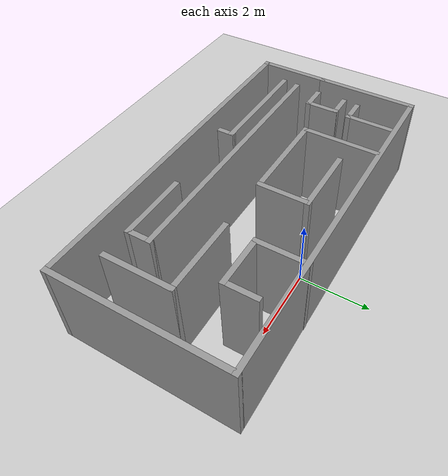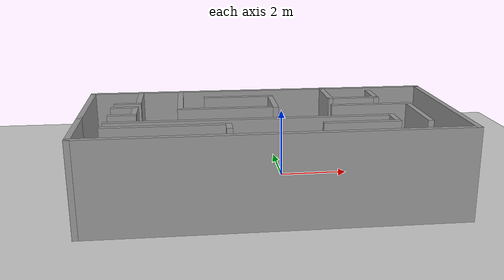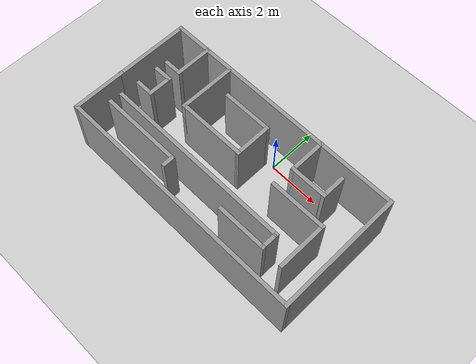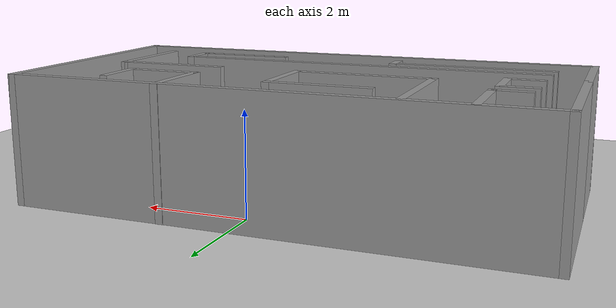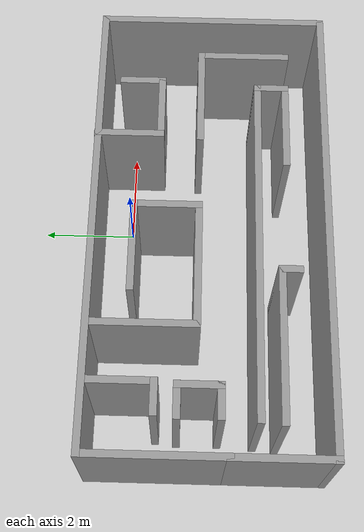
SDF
<sdf version="1.7">
 <world name="default">
  <light name="sun" type="directional">
   <pose>0 0 10 0 -0 0</pose>
   <diffuse>0.8 0.8 0.8 1</diffuse>
   <specular>0.2 0.2 0.2 1</specular>
   <attenuation>
    <range>1000</range>
    <constant>0.9</constant>
    <linear>0.01</linear>
    <quadratic>0.001</quadratic>
   </attenuation>
   <direction>-0.5 0.1 -0.9</direction>
   <spot><inner_angle>0</inner_angle><outer_angle>0</outer_angle><falloff>0</falloff></spot>
  </light>
  <model name="ground_plane">
   <static>1</static>
   <link name="link">
    <collision name="collision">
     <geometry><plane><normal>0 0 1</normal><size>100 100</size></plane></geometry>
     <surface><friction><ode><mu>100</mu><mu2>50</mu2></ode></friction></surface>
    </collision>
    <visual name="visual">
     <cast_shadows>0</cast_shadows>
     <geometry><plane><normal>0 0 1</normal><size>100 100</size></plane></geometry>
     <material>
      <script><uri>file://media/materials/scripts/gazebo.material</uri><name>Gazebo/Grey</name></script>
     </material>
    </visual>
   </link>
  </model>
  <gravity>0 0 -9.8</gravity>
  <magnetic_field>6e-06 2.3e-05 -4.2e-05</magnetic_field>
  <atmosphere type="adiabatic"/>
  <physics type="ode">
   <max_step_size>0.001</max_step_size>
   <real_time_factor>1</real_time_factor>
   <real_time_update_rate>1000</real_time_update_rate>
  </physics>
  <scene><ambient>0.4 0.4 0.4 1</ambient><background>0.7 0.7 0.7 1</background><shadows>1</shadows></scene>
  <audio><device>default</device></audio>
  <spherical_coordinates>
   <surface_model>EARTH_WGS84</surface_model>
   <latitude_deg>0</latitude_deg>
   <longitude_deg>0</longitude_deg>
   <elevation>0</elevation>
   <heading_deg>0</heading_deg>
  </spherical_coordinates>
  <model name="simulation">
   <pose>-0.605204 -1.0613 0 0 -0 0</pose>
   <link name="Wall_0">
    <collision name="Wall_0_Collision">
     <geometry><box><size>3 0.15 2.5</size></box></geometry>
     <pose>0 0 1.25 0 -0 0</pose>
    </collision>
    <visual name="Wall_0_Visual">
     <pose>0 0 1.25 0 -0 0</pose>
     <geometry><box><size>3 0.15 2.5</size></box></geometry>
     <material>
      <script><uri>file://media/materials/scripts/gazebo.material</uri><name>Gazebo/Grey</name></script>
      <ambient>1 1 1 1</ambient>
     </material>
     <meta><layer>0</layer></meta>
    </visual>
    <pose>-4.925 0.3525 0 0 -0 1.5708</pose>
   </link>
   <link name="Wall_1">
    <collision name="Wall_1_Collision">
     <geometry><box><size>10 0.15 2.5</size></box></geometry>
     <pose>0 0 1.25 0 -0 0</pose>
    </collision>
    <visual name="Wall_1_Visual">
     <pose>0 0 1.25 0 -0 0</pose>
     <geometry><box><size>10 0.15 2.5</size></box></geometry>
     <material>
      <script><uri>file://media/materials/scripts/gazebo.material</uri><name>Gazebo/Grey</name></script>
      <ambient>1 1 1 1</ambient>
     </material>
     <meta><layer>0</layer></meta>
    </visual>
    <pose>0 1.7775 0 0 -0 0</pose>
   </link>
   <link name="Wall_10">
    <collision name="Wall_10_Collision">
     <geometry><box><size>1 0.15 2.5</size></box></geometry>
     <pose>0 0 1.25 0 -0 0</pose>
    </collision>
    <visual name="Wall_10_Visual">
     <pose>0 0 1.25 0 -0 0</pose>
     <geometry><box><size>1 0.15 2.5</size></box></geometry>
     <material>
      <script><uri>file://media/materials/scripts/gazebo.material</uri><name>Gazebo/Grey</name></script>
      <ambient>1 1 1 1</ambient>
     </material>
     <meta><layer>0</layer></meta>
    </visual>
    <pose>-3.575 -0.4775 0 0 -0 -1.5708</pose>
   </link>
   <link name="Wall_11">
    <collision name="Wall_11_Collision">
     <geometry><box><size>0.75 0.15 2.5</size></box></geometry>
     <pose>0 0 1.25 0 -0 0</pose>
    </collision>
    <visual name="Wall_11_Visual">
     <pose>0 0 1.25 0 -0 0</pose>
     <geometry><box><size>0.75 0.15 2.5</size></box></geometry>
     <material>
      <script><uri>file://media/materials/scripts/gazebo.material</uri><name>Gazebo/Grey</name></script>
      <ambient>1 1 1 1</ambient>
     </material>
     <meta><layer>0</layer></meta>
    </visual>
    <pose>-3.875 -0.9025 0 0 -0 3.14159</pose>
   </link>
   <link name="Wall_13">
    <collision name="Wall_13_Collision">
     <geometry><box><size>2.25 0.15 2.5</size></box></geometry>
     <pose>0 0 1.25 0 -0 0</pose>
    </collision>
    <visual name="Wall_13_Visual">
     <pose>0 0 1.25 0 -0 0</pose>
     <geometry><box><size>2.25 0.15 2.5</size></box></geometry>
     <material>
      <script><uri>file://media/materials/scripts/gazebo.material</uri><name>Gazebo/Grey</name></script>
      <ambient>1 1 1 1</ambient>
     </material>
     <meta><layer>0</layer></meta>
    </visual>
    <pose>-2.365 0.6375 0 0 -0 -1.5708</pose>
   </link>
   <link name="Wall_14">
    <collision name="Wall_14_Collision">
     <geometry><box><size>2.75 0.15 2.5</size></box></geometry>
     <pose>0 0 1.25 0 -0 0</pose>
    </collision>
    <visual name="Wall_14_Visual">
     <pose>0 0 1.25 0 -0 0</pose>
     <geometry><box><size>2.75 0.15 2.5</size></box></geometry>
     <material>
      <script><uri>file://media/materials/scripts/gazebo.material</uri><name>Gazebo/Grey</name></script>
      <ambient>1 1 1 1</ambient>
     </material>
     <meta><layer>0</layer></meta>
    </visual>
    <pose>-1.065 -0.4125 0 0 -0 0</pose>
   </link>
   <link name="Wall_15">
    <collision name="Wall_15_Collision">
     <geometry><box><size>1.5 0.15 2.5</size></box></geometry>
     <pose>0 0 1.25 0 -0 0</pose>
    </collision>
    <visual name="Wall_15_Visual">
     <pose>0 0 1.25 0 -0 0</pose>
     <geometry><box><size>1.5 0.15 2.5</size></box></geometry>
     <material>
      <script><uri>file://media/materials/scripts/gazebo.material</uri><name>Gazebo/Grey</name></script>
      <ambient>1 1 1 1</ambient>
     </material>
     <meta><layer>0</layer></meta>
    </visual>
    <pose>0.235 0.2625 0 0 -0 1.5708</pose>
   </link>
   <link name="Wall_16">
    <collision name="Wall_16_Collision">
     <geometry><box><size>2 0.15 2.5</size></box></geometry>
     <pose>0 0 1.25 0 -0 0</pose>
    </collision>
    <visual name="Wall_16_Visual">
     <pose>0 0 1.25 0 -0 0</pose>
     <geometry><box><size>2 0.15 2.5</size></box></geometry>
     <material>
      <script><uri>file://media/materials/scripts/gazebo.material</uri><name>Gazebo/Grey</name></script>
      <ambient>1 1 1 1</ambient>
     </material>
     <meta><layer>0</layer></meta>
    </visual>
    <pose>-0.69 0.9375 0 0 -0 3.14159</pose>
   </link>
   <link name="Wall_18">
    <collision name="Wall_18_Collision">
     <geometry><box><size>7.5 0.15 2.5</size></box></geometry>
     <pose>0 0 1.25 0 -0 0</pose>
    </collision>
    <visual name="Wall_18_Visual">
     <pose>0 0 1.25 0 -0 0</pose>
     <geometry><box><size>7.5 0.15 2.5</size></box></geometry>
     <material>
      <script><uri>file://media/materials/scripts/gazebo.material</uri><name>Gazebo/Grey</name></script>
      <ambient>1 1 1 1</ambient>
     </material>
     <meta><layer>0</layer></meta>
    </visual>
    <pose>-0.54 -1.6425 0 0 -0 0</pose>
   </link>
   <link name="Wall_19">
    <collision name="Wall_19_Collision">
     <geometry><box><size>0.75 0.15 2.5</size></box></geometry>
     <pose>0 0 1.25 0 -0 0</pose>
    </collision>
    <visual name="Wall_19_Visual">
     <pose>0 0 1.25 0 -0 0</pose>
     <geometry><box><size>0.75 0.15 2.5</size></box></geometry>
     <material>
      <script><uri>file://media/materials/scripts/gazebo.material</uri><name>Gazebo/Grey</name></script>
      <ambient>1 1 1 1</ambient>
     </material>
     <meta><layer>0</layer></meta>
    </visual>
    <pose>3.135 -1.9425 0 0 -0 -1.5708</pose>
   </link>
   <link name="Wall_2">
    <collision name="Wall_2_Collision">
     <geometry><box><size>5 0.15 2.5</size></box></geometry>
     <pose>0 0 1.25 0 -0 0</pose>
    </collision>
    <visual name="Wall_2_Visual">
     <pose>0 0 1.25 0 -0 0</pose>
     <geometry><box><size>5 0.15 2.5</size></box></geometry>
     <material>
      <script><uri>file://media/materials/scripts/gazebo.material</uri><name>Gazebo/Grey</name></script>
      <ambient>1 1 1 1</ambient>
     </material>
     <meta><layer>0</layer></meta>
    </visual>
    <pose>4.925 -0.6475 0 0 -0 -1.5708</pose>
   </link>
   <link name="Wall_20">
    <collision name="Wall_20_Collision">
     <geometry><box><size>2 0.15 2.5</size></box></geometry>
     <pose>0 0 1.25 0 -0 0</pose>
    </collision>
    <visual name="Wall_20_Visual">
     <pose>0 0 1.25 0 -0 0</pose>
     <geometry><box><size>2 0.15 2.5</size></box></geometry>
     <material>
      <script><uri>file://media/materials/scripts/gazebo.material</uri><name>Gazebo/Grey</name></script>
      <ambient>1 1 1 1</ambient>
     </material>
     <meta><layer>0</layer></meta>
    </visual>
    <pose>2.21 -2.2425 0 0 -0 3.14159</pose>
   </link>
   <link name="Wall_22">
    <collision name="Wall_22_Collision">
     <geometry><box><size>3.25 0.15 2.5</size></box></geometry>
     <pose>0 0 1.25 0 -0 0</pose>
    </collision>
    <visual name="Wall_22_Visual">
     <pose>0 0 1.25 0 -0 0</pose>
     <geometry><box><size>3.25 0.15 2.5</size></box></geometry>
     <material>
      <script><uri>file://media/materials/scripts/gazebo.material</uri><name>Gazebo/Grey</name></script>
      <ambient>1 1 1 1</ambient>
     </material>
     <meta><layer>0</layer></meta>
    </visual>
    <pose>-2.705 -2.1025 0 0 -0 0</pose>
   </link>
   <link name="Wall_23">
    <collision name="Wall_23_Collision">
     <geometry><box><size>0.5 0.15 2.5</size></box></geometry>
     <pose>0 0 1.25 0 -0 0</pose>
    </collision>
    <visual name="Wall_23_Visual">
     <pose>0 0 1.25 0 -0 0</pose>
     <geometry><box><size>0.5 0.15 2.5</size></box></geometry>
     <material>
      <script><uri>file://media/materials/scripts/gazebo.material</uri><name>Gazebo/Grey</name></script>
      <ambient>1 1 1 1</ambient>
     </material>
     <meta><layer>0</layer></meta>
    </visual>
    <pose>-1.155 -2.2775 0 0 -0 -1.5708</pose>
   </link>
   <link name="Wall_27">
    <collision name="Wall_27_Collision">
     <geometry><box><size>1.5 0.15 2.5</size></box></geometry>
     <pose>0 0 1.25 0 -0 0</pose>
    </collision>
    <visual name="Wall_27_Visual">
     <pose>0 0 1.25 0 -0 0</pose>
     <geometry><box><size>1.5 0.15 2.5</size></box></geometry>
     <material>
      <script><uri>file://media/materials/scripts/gazebo.material</uri><name>Gazebo/Grey</name></script>
      <ambient>1 1 1 1</ambient>
     </material>
     <meta><layer>0</layer></meta>
    </visual>
    <pose>1.925 1.1125 0 0 -0 -1.5708</pose>
   </link>
   <link name="Wall_28">
    <collision name="Wall_28_Collision">
     <geometry><box><size>1.5 0.15 2.5</size></box></geometry>
     <pose>0 0 1.25 0 -0 0</pose>
    </collision>
    <visual name="Wall_28_Visual">
     <pose>0 0 1.25 0 -0 0</pose>
     <geometry><box><size>1.5 0.15 2.5</size></box></geometry>
     <material>
      <script><uri>file://media/materials/scripts/gazebo.material</uri><name>Gazebo/Grey</name></script>
      <ambient>1 1 1 1</ambient>
     </material>
     <meta><layer>0</layer></meta>
    </visual>
    <pose>2.6 0.4375 0 0 -0 0</pose>
   </link>
   <link name="Wall_29">
    <collision name="Wall_29_Collision">
     <geometry><box><size>1 0.15 2.5</size></box></geometry>
     <pose>0 0 1.25 0 -0 0</pose>
    </collision>
    <visual name="Wall_29_Visual">
     <pose>0 0 1.25 0 -0 0</pose>
     <geometry><box><size>1 0.15 2.5</size></box></geometry>
     <material>
      <script><uri>file://media/materials/scripts/gazebo.material</uri><name>Gazebo/Grey</name></script>
      <ambient>1 1 1 1</ambient>
     </material>
     <meta><layer>0</layer></meta>
    </visual>
    <pose>3.275 0.8625 0 0 -0 1.5708</pose>
   </link>
   <link name="Wall_3">
    <collision name="Wall_3_Collision">
     <geometry><box><size>10 0.15 2.5</size></box></geometry>
     <pose>0 0 1.25 0 -0 0</pose>
    </collision>
    <visual name="Wall_3_Visual">
     <pose>0 0 1.25 0 -0 0</pose>
     <geometry><box><size>10 0.15 2.5</size></box></geometry>
     <material>
      <script><uri>file://media/materials/scripts/gazebo.material</uri><name>Gazebo/Grey</name></script>
      <ambient>1 1 1 1</ambient>
     </material>
     <meta><layer>0</layer></meta>
    </visual>
    <pose>0 -3.0725 0 0 -0 3.14159</pose>
   </link>
   <link name="Wall_31">
    <collision name="Wall_31_Collision">
     <geometry><box><size>2.25 0.15 2.5</size></box></geometry>
     <pose>0 0 1.25 0 -0 0</pose>
    </collision>
    <visual name="Wall_31_Visual">
     <pose>0 0 1.25 0 -0 0</pose>
     <geometry><box><size>2.25 0.15 2.5</size></box></geometry>
     <material>
      <script><uri>file://media/materials/scripts/gazebo.material</uri><name>Gazebo/Grey</name></script>
      <ambient>1 1 1 1</ambient>
     </material>
     <meta><layer>0</layer></meta>
    </visual>
    <pose>2.915 -0.4125 0 0 -0 0</pose>
   </link>
   <link name="Wall_32">
    <collision name="Wall_32_Collision">
     <geometry><box><size>2 0.15 2.5</size></box></geometry>
     <pose>0 0 1.25 0 -0 0</pose>
    </collision>
    <visual name="Wall_32_Visual">
     <pose>0 0 1.25 0 -0 0</pose>
     <geometry><box><size>2 0.15 2.5</size></box></geometry>
     <material>
      <script><uri>file://media/materials/scripts/gazebo.material</uri><name>Gazebo/Grey</name></script>
      <ambient>1 1 1 1</ambient>
     </material>
     <meta><layer>0</layer></meta>
    </visual>
    <pose>3.965 -1.3375 0 0 -0 -1.5708</pose>
   </link>
   <link name="Wall_4">
    <collision name="Wall_4_Collision">
     <geometry><box><size>2.15 0.15 2.5</size></box></geometry>
     <pose>0 0 1.25 0 -0 0</pose>
    </collision>
    <visual name="Wall_4_Visual">
     <pose>0 0 1.25 0 -0 0</pose>
     <geometry><box><size>2.15 0.15 2.5</size></box></geometry>
     <material>
      <script><uri>file://media/materials/scripts/gazebo.material</uri><name>Gazebo/Grey</name></script>
      <ambient>1 1 1 1</ambient>
     </material>
     <meta><layer>0</layer></meta>
    </visual>
    <pose>-4.925 -2.0725 0 0 -0 1.5708</pose>
   </link>
   <link name="Wall_6">
    <collision name="Wall_6_Collision">
     <geometry><box><size>1.5 0.15 2.5</size></box></geometry>
     <pose>0 0 1.25 0 -0 0</pose>
    </collision>
    <visual name="Wall_6_Visual">
     <pose>0 0 1.25 0 -0 0</pose>
     <geometry><box><size>1.5 0.15 2.5</size></box></geometry>
     <material>
      <script><uri>file://media/materials/scripts/gazebo.material</uri><name>Gazebo/Grey</name></script>
      <ambient>1 1 1 1</ambient>
     </material>
     <meta><layer>0</layer></meta>
    </visual>
    <pose>-3.525 1.0625 0 0 -0 -1.5708</pose>
   </link>
   <link name="Wall_7">
    <collision name="Wall_7_Collision">
     <geometry><box><size>0.75 0.15 2.5</size></box></geometry>
     <pose>0 0 1.25 0 -0 0</pose>
    </collision>
    <visual name="Wall_7_Visual">
     <pose>0 0 1.25 0 -0 0</pose>
     <geometry><box><size>0.75 0.15 2.5</size></box></geometry>
     <material>
      <script><uri>file://media/materials/scripts/gazebo.material</uri><name>Gazebo/Grey</name></script>
      <ambient>1 1 1 1</ambient>
     </material>
     <meta><layer>0</layer></meta>
    </visual>
    <pose>-3.825 0.3875 0 0 -0 3.14159</pose>
   </link>
   <link name="Wall_9">
    <collision name="Wall_9_Collision">
     <geometry><box><size>0.75 0.15 2.5</size></box></geometry>
     <pose>0 0 1.25 0 -0 0</pose>
    </collision>
    <visual name="Wall_9_Visual">
     <pose>0 0 1.25 0 -0 0</pose>
     <geometry><box><size>0.75 0.15 2.5</size></box></geometry>
     <material>
      <script><uri>file://media/materials/scripts/gazebo.material</uri><name>Gazebo/Grey</name></script>
      <ambient>1 1 1 1</ambient>
     </material>
     <meta><layer>0</layer></meta>
    </visual>
    <pose>-3.875 -0.0525 0 0 -0 0</pose>
   </link>
   <static>1</static>
  </model>
 </world>
</sdf>
